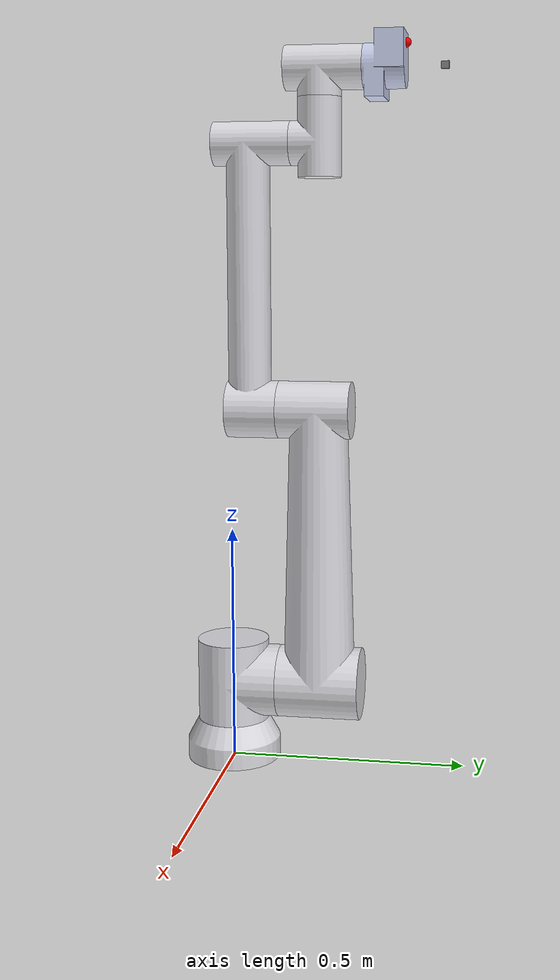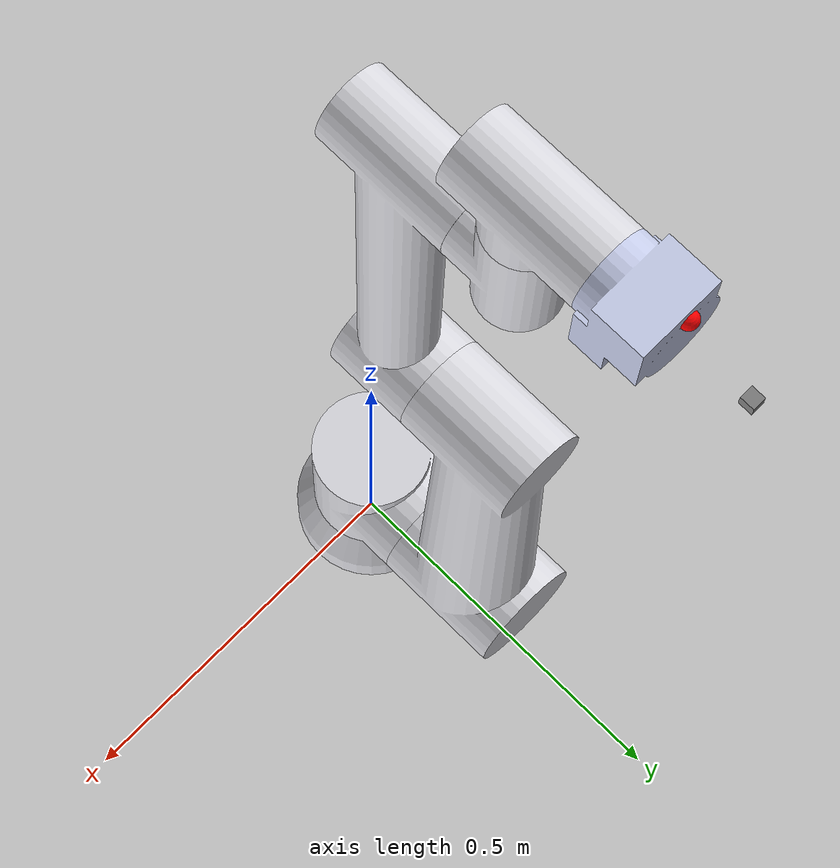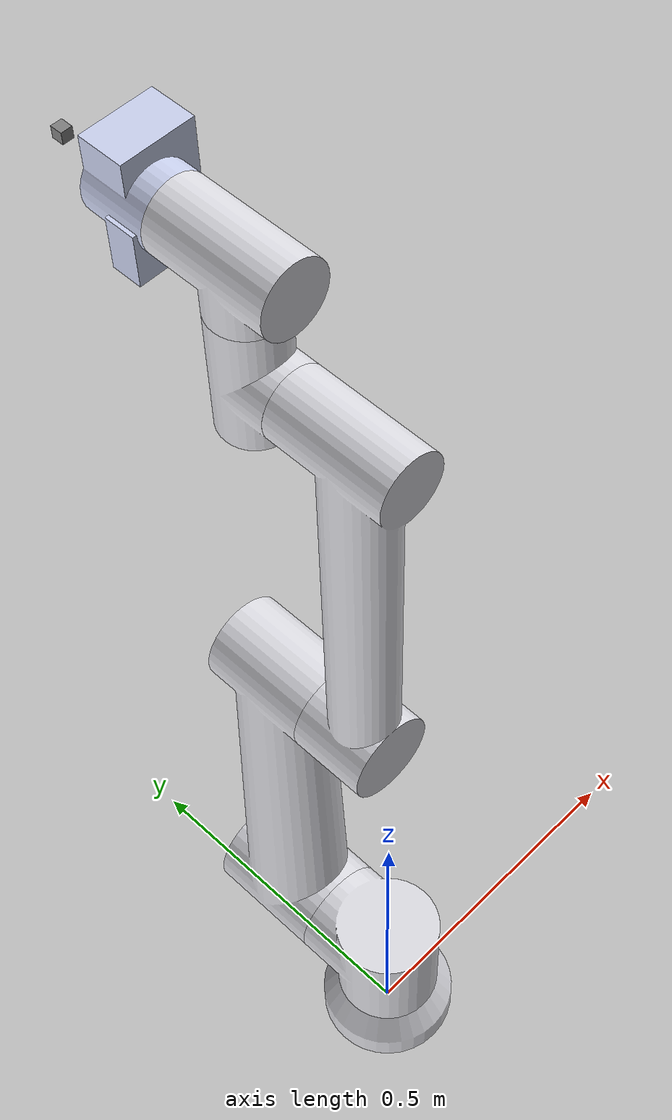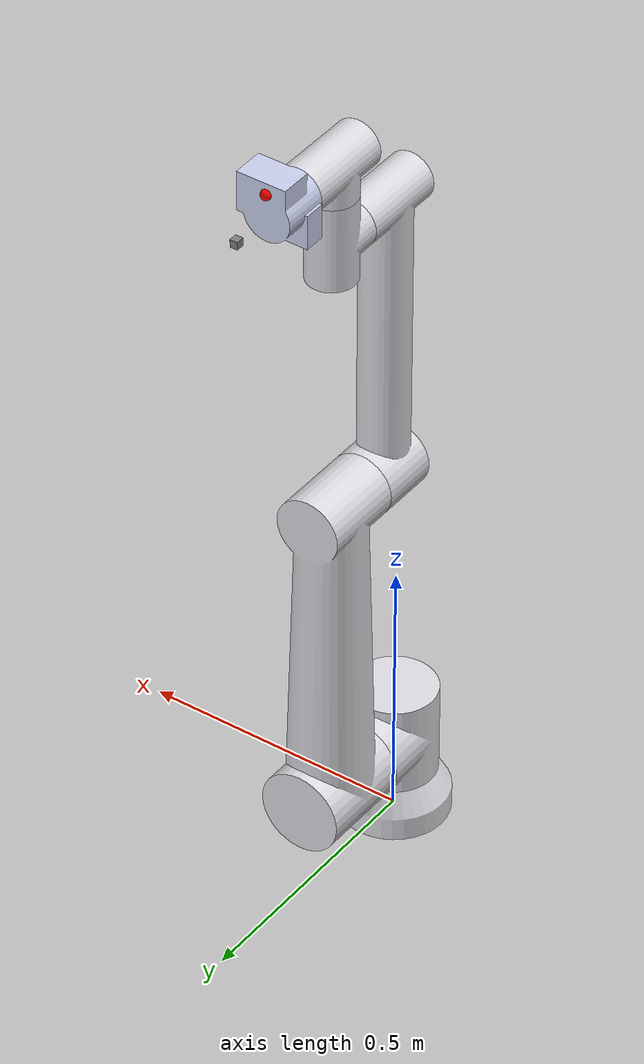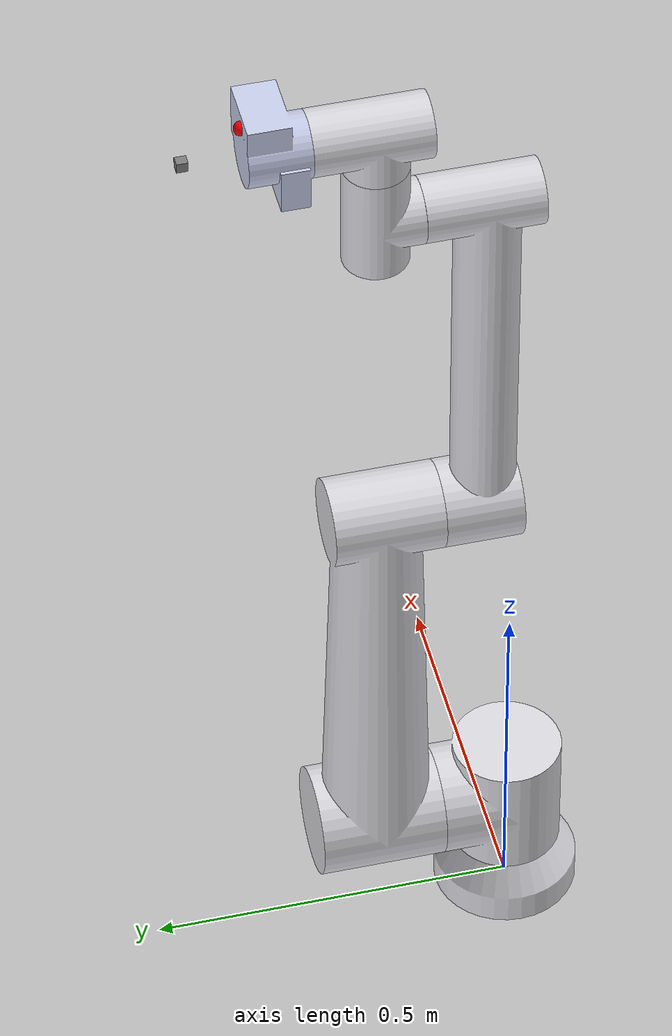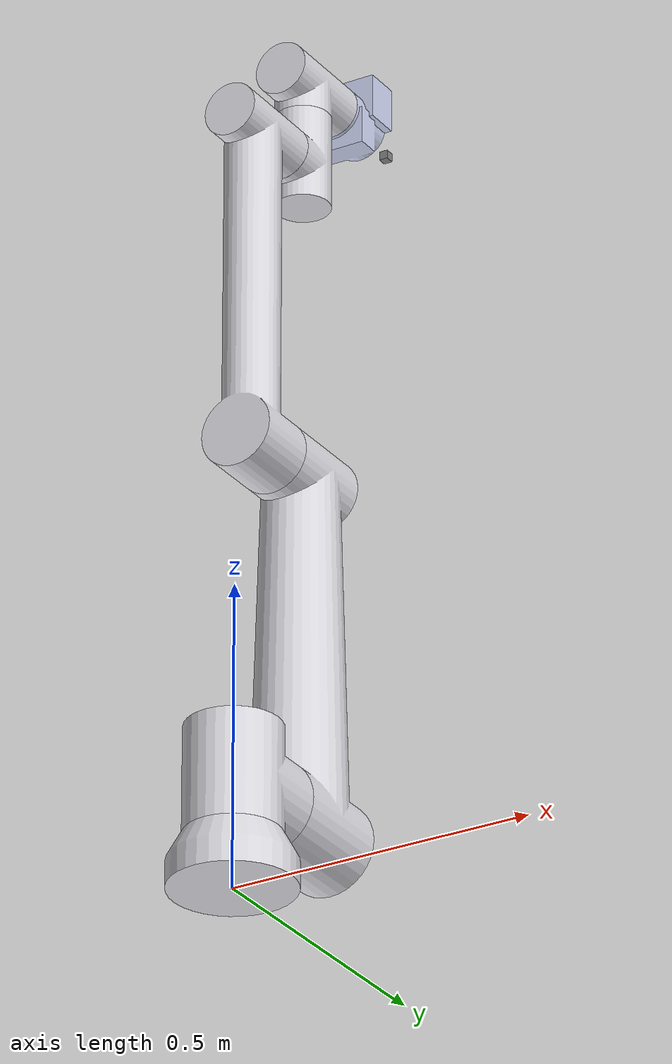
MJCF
<mujoco model="sbot">
  <compiler angle="radian"/>

  <asset>
    <mesh name="base_link" file="meshes/sbot/collision/base_link.STL"/>
    <mesh name="shoulder_link" file="meshes/sbot/collision/shoulder_link.STL"/>
    <mesh name="upper_arm_link" file="meshes/sbot/collision/upper_arm_link.STL"/>
    <mesh name="forearm_link" file="meshes/sbot/collision/forearm_link.STL"/>
    <mesh name="wrist_1_link" file="meshes/sbot/collision/wrist_1_link.STL"/>
    <mesh name="wrist_2_link" file="meshes/sbot/collision/wrist_2_link.STL"/>
    <mesh name="wrist_3_link" file="meshes/sbot/collision/wrist_3_link.STL"/>
  </asset>

  <worldbody>
    <body name="sbot" pos="0 0 0">
      <geom quat="0.707107 0 0 -0.707107" type="mesh" contype="0" conaffinity="0" group="1" density="0" rgba="0.86667 0.86667 0.8902 1" mesh="base_link"/>
      <geom quat="0.707107 0 0 -0.707107" type="mesh" rgba="0.86667 0.86667 0.8902 1" mesh="base_link"/>
      <body name="shoulder_link" pos="0 0 0.172" quat="0.707107 0 0 -0.707107">
        <inertial pos="-0.015506 5.31134e-06 0.00202666" quat="0.707744 0.00819027 0.00819366 0.706374" mass="7.48001" diaginertia="0.0296005 0.0290159 0.0236767"/>
        <joint name="joint0" pos="0 0 0" axis="0 0 1" range="-6.28319 6.28319" actuatorfrcrange="-346 346"/>
        <geom type="mesh" contype="0" conaffinity="0" group="1" density="0" rgba="0.866667 0.866667 0.890196 1" mesh="shoulder_link"/>
        <geom type="mesh" rgba="0.866667 0.866667 0.890196 1" mesh="shoulder_link"/>
        <body name="upper_arm_link" pos="-0.1885 0 0">
          <inertial pos="0.00037048 -1.0498e-06 0.24431" quat="0.707104 0.00419016 0.00419555 0.707085" mass="13.27" diaginertia="0.67925 0.673219 0.0370655"/>
          <joint name="joint1" pos="0 0 0" axis="-1 0 0" range="-2.35619 2.35619" actuatorfrcrange="-346 346"/>
          <geom type="mesh" contype="0" conaffinity="0" group="1" density="0" rgba="0.86667 0.86667 0.8902 1" mesh="upper_arm_link"/>
          <geom type="mesh" rgba="0.86667 0.86667 0.8902 1" mesh="upper_arm_link"/>
          <body name="forearm_link" pos="0.14635 0 0.5907">
            <inertial pos="-0.0085627 -0.000680804 0.284369" quat="0.71768 0.00484718 0.00408494 0.696344" mass="3.99016" diaginertia="0.185231 0.183525 0.00594995"/>
            <joint name="joint2" pos="0 0 0" axis="-1 0 0" range="-3.14159 3.14159" actuatorfrcrange="-163 163"/>
            <geom type="mesh" contype="0" conaffinity="0" group="1" density="0" rgba="0.866667 0.866667 0.890196 1" mesh="forearm_link"/>
            <geom type="mesh" rgba="0.866667 0.866667 0.890196 1" mesh="forearm_link"/>
            <body name="wrist_1_link" pos="-0.1498 0 0.5494">
              <inertial pos="0.00603382 5.30466e-05 0.00949427" quat="0.705615 -0.0107006 -0.0099924 0.708444" mass="2.34999" diaginertia="0.00569172 0.00536728 0.00279135"/>
              <joint name="joint3" pos="0 0 0" axis="-1 0 0" range="-6.28319 6.28319" actuatorfrcrange="-63 63"/>
              <geom type="mesh" contype="0" conaffinity="0" group="1" density="0" rgba="0.866667 0.866667 0.890196 1" mesh="wrist_1_link"/>
              <geom type="mesh" rgba="0.866667 0.866667 0.890196 1" mesh="wrist_1_link"/>
              <body name="wrist_2_link" pos="0 0 0.1498">
                <inertial pos="-0.00949427 -5.30466e-05 -0.00603382" quat="0.493379 0.506011 0.508512 0.491879" mass="2.34999" diaginertia="0.00569172 0.00536728 0.00279135"/>
                <joint name="joint4" pos="0 0 0" axis="0 0 1" range="-6.28319 6.28319" actuatorfrcrange="-63 63"/>
                <geom type="mesh" contype="0" conaffinity="0" group="1" density="0" rgba="0.866667 0.866667 0.890196 1" mesh="wrist_2_link"/>
                <geom type="mesh" rgba="0.866667 0.866667 0.890196 1" mesh="wrist_2_link"/>
                <body name="wrist_3_link" pos="-0.1767 0 0">
                  <inertial pos="-0.0596959 4.23114e-05 -0.000741538" quat="0.498223 0.500476 0.519237 0.481342" mass="3.84506" diaginertia="0.0208399 0.0207775 0.0121087"/>
                  <joint name="joint5" pos="0 0 0" axis="-1 0 0" range="-6.28319 6.28319" actuatorfrcrange="-63 63"/>
                  <geom type="mesh" contype="0" conaffinity="0" group="1" density="0" rgba="0.792157 0.819608 0.933333 1" mesh="wrist_3_link"/>
                  <geom type="mesh" rgba="0.792157 0.819608 0.933333 1" mesh="wrist_3_link"/>
                  <geom size="0.00723 0.00723 0.007825" pos="-0.0785 0 0" quat="0.5 0.5 -0.5 -0.5" type="box"/>
                  <body name="attachment" pos="0 0 0.045" quat="0 0 0 1">
                    <site name="attachment_site" rgba="1 0 0 1" size="0.01" group="1"/>
                  </body>
                </body>
              </body>
            </body>
          </body>
        </body>
      </body>
    </body>
  </worldbody>
  <actuator>
    <position name="joint0" joint="joint0" kp="3460" kv="200" forcerange="-346 346" ctrlrange="-6.283185307179586 6.283185307179586"/> <!-- velocity="4.71238898038469" -->
    <position name="joint1" joint="joint1" kp="3460" kv="200" forcerange="-346 346" ctrlrange="-2.356194490192345 2.356194490192345"/> <!-- velocity="4.71238898038469" -->
    <position name="joint2" joint="joint2" kp="1630" kv="200" forcerange="-163 163" ctrlrange="-3.141592653589793 3.141592653589793"/> <!-- velocity="5.026548245743669" -->
    <position name="joint3" joint="joint3" kp="630" kv="50" forcerange="-63 63" ctrlrange="-6.283185307179586 6.283185307179586"/> <!-- velocity="6.806784082777885" -->
    <position name="joint4" joint="joint4" kp="630" kv="50" forcerange="-63 63" ctrlrange="-6.283185307179586 6.283185307179586"/> <!-- velocity="6.806784082777885" -->
    <position name="joint5" joint="joint5" kp="630" kv="50" forcerange="-63 63" ctrlrange="-6.283185307179586 6.283185307179586"/> <!-- velocity="6.806784082777885" -->
  </actuator>

</mujoco>
